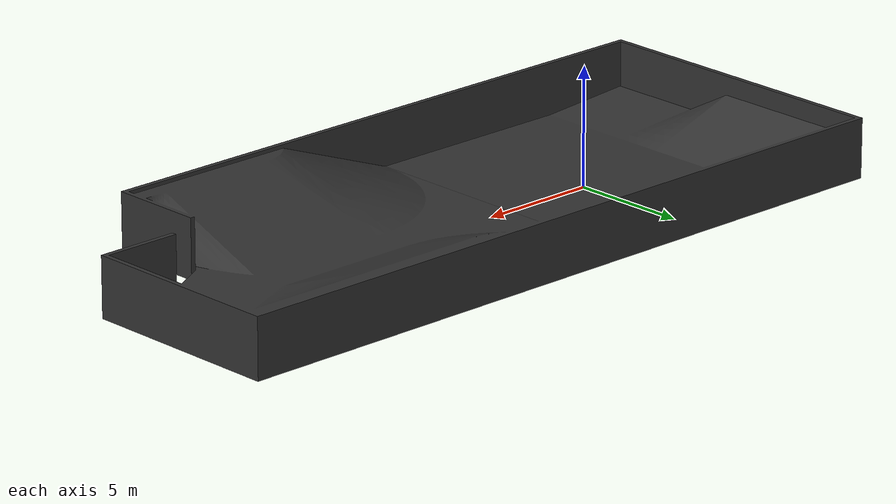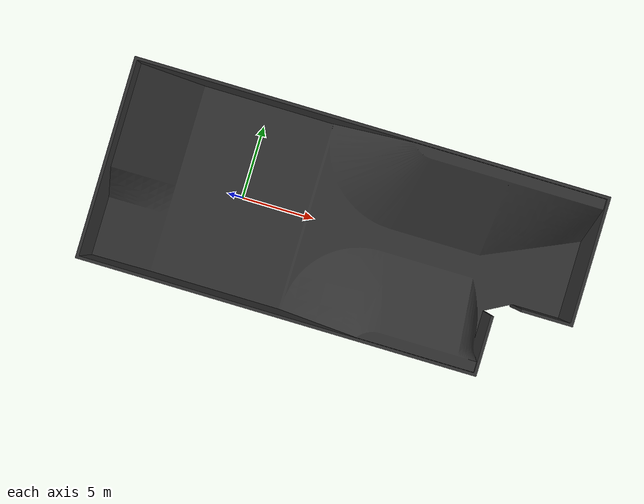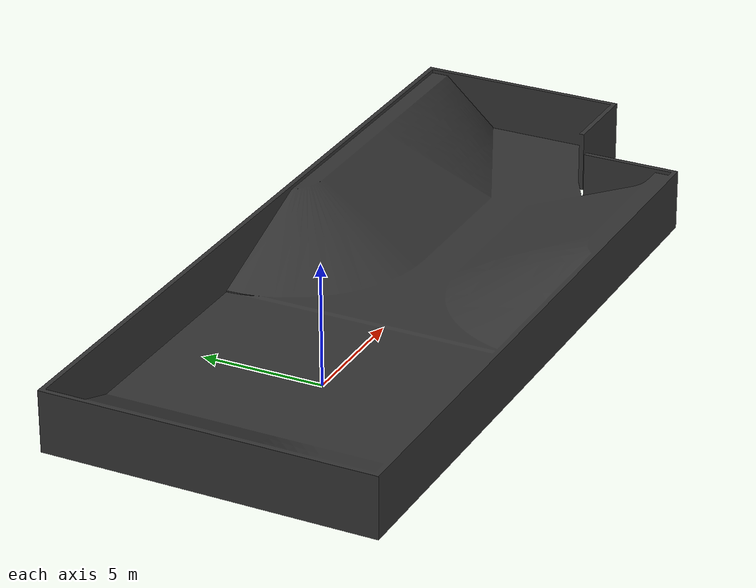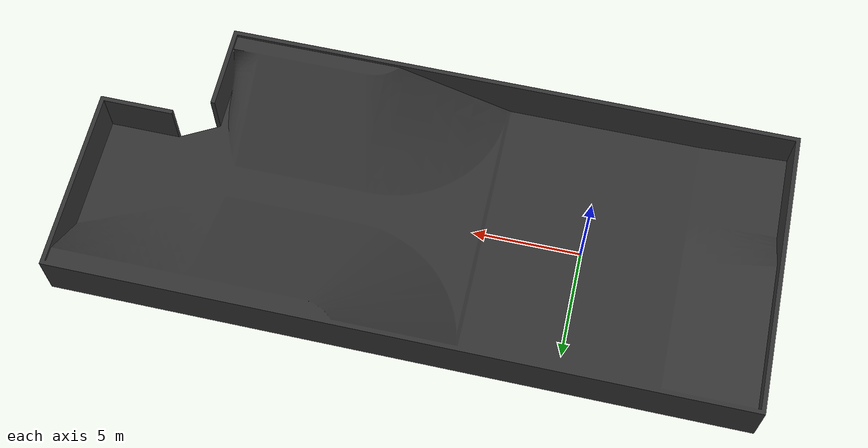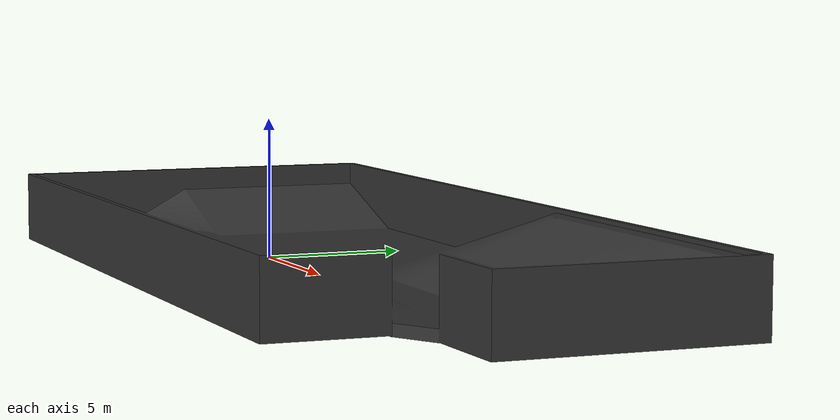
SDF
<?xml version="1.0" ?>
<sdf version='1.6'>
  <model name="sandpit">

    <static>true</static>

    <link name="sandpit_link">

    <visual name="link0_visual">
        <geometry>
          <mesh>
            <uri>package://euro2moon/worlds/models/sandpit/meshes/sandpit.dae</uri>
          </mesh>
        </geometry>
        <material>
          <diffuse>0.2 0.2 0.2</diffuse>
          <specular>0.2 0.2 0.2</specular>
          <pbr>
            <metal>
              <albedo_map>package://euro2moon/worlds/models/sandpit/meshes/textures/diffuse.png</albedo_map>
            </metal>
          </pbr>
        </material>
      </visual>

      <collision name="sandpit_colission">
        <geometry>
          <mesh>
            <uri>package://euro2moon/worlds/models/sandpit/meshes/sandpit.dae</uri>
            <scale>1 1 1</scale>
          </mesh>
        </geometry>
        <max_contacts>10</max_contacts>
        <surface>
          <bounce/>
          <friction>
            <ode/>
          </friction>
          <contact>
            <ode/>
          </contact>
        </surface>
      </collision>

    </link>

  </model>
</sdf>
